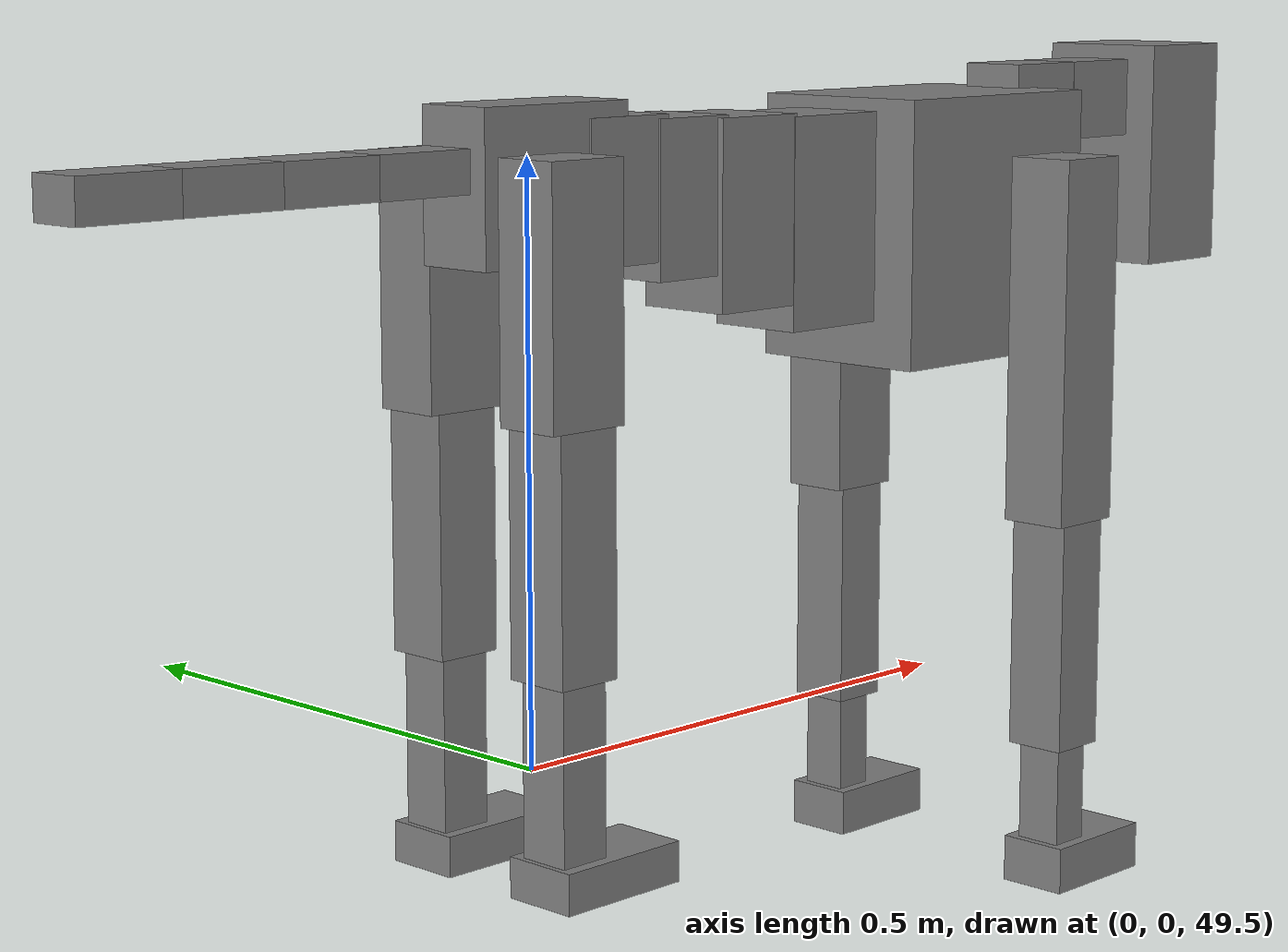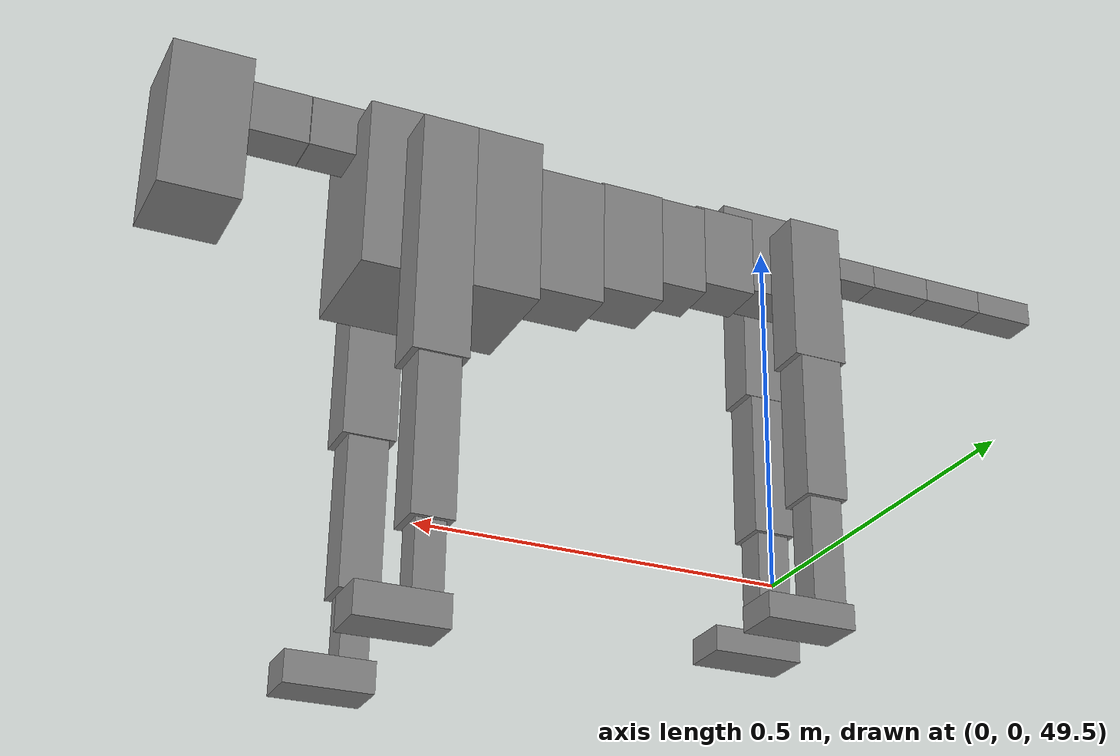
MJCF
<mujoco model="dog">

    <default>
        <joint armature="0.02" stiffness="1" damping="0.2" limited="true"/>
        <geom condim="3" friction="1 0.05 0.05" margin="0.01"/>
        <motor ctrllimited="true" ctrlrange="-1.0 1.0" forcelimited="true" gear="50"/>
    </default>

    <compiler inertiafromgeom="true" angle="radian"/>

    <option timestep="0.016" iterations="50" tolerance="1e-10" solver="Newton" jacobian="dense" cone="pyramidal"/>

    <size nconmax="20000" njmax="60000" nstack="5000000"/>
    <visual>
        <map force="0.1" zfar="30"/>
        <rgba haze="0.15 0.25 0.35 1"/>
        <quality shadowsize="2048"/>
        <global offwidth="800" offheight="800"/>
    </visual>

    <asset>
        <texture type="skybox" builtin="gradient" rgb1="0.3 0.5 0.7" rgb2="0 0 0" width="512" height="512"/>
        <texture name="texplane" type="2d" builtin="checker" rgb1=".2 .3 .4" rgb2=".1 0.15 0.2" width="512" height="512"
                 mark="cross" markrgb=".8 .8 .8"/>
        <texture name="texgeom" type="cube" builtin="flat" mark="cross" width="127" height="1278" rgb1="0.8 0.6 0.4"
                 rgb2="0.8 0.6 0.4" markrgb="1 1 1" random="0.01"/>

        <material name="matplane" reflectance="0.3" texture="texplane" texrepeat="1 1" texuniform="true"/>
        <material name="matgeom" texture="texgeom" texuniform="true" rgba="0.8 0.6 .4 1"/>
    </asset>

    <worldbody>
        <geom name="floor" pos="0 0 0" size="0 0 .25" type="plane" material="matplane" condim="3"/>

        <light directional="false" diffuse=".2 .2 .2" specular="0 0 0" pos="0 0 5" dir="0 0 -1" castshadow="false"/>
        <light mode="targetbodycom" target="torso" directional="false" diffuse=".8 .8 .8" specular="0.3 0.3 0.3"
               pos="0 0 4.0" dir="0 0 -1"/>

        <body name="root" pos="0 0 50">
            <freejoint name="root_1"/>
            <geom type="box" pos="0 0 -0.02" size="0.0774  0.0358  0.063" density="2030"/>

            <body name="spine1" pos="0.054 0 0">
                <joint name="spine1_y" axis="0 1 0" range="0 0.7" limited="true"/>
                <geom type="box" pos="0.02375 0 -0.03" size="0.04375  0.0375  0.05985" density="2030"/>

                <body name="spine2" pos="0.0612 0 0">
                    <joint name="spine2_y" axis="0 1 0" range="-0.15 0.15" limited="true"/>
                    <geom type="box" pos="0.03555  0  -0.04" size="0.04055  0.039  0.06615" density="2030"/>

                    <body name="spine3" pos="0.0730 0 0">
                        <joint name="spine3_y" axis="0 1 0" range="-0.15 0.15" limited="true"/>
                        <geom type="box" pos="0.03555  0  -0.057" size="0.04555  0.0445  0.081" density="2030"/>

                        <body name="spine4" pos="0.0780 0 0">
                            <joint name="spine4_y" axis="0 1 0" range="-0.15 0.15" limited="true"/>
                            <geom type="box" pos="0.05265  0  -0.07" size="0.05265  0.045  0.09135" density="2030"/>

                            <body name="torso" pos="0.1082 0 0">
                                <joint name="torso_y" axis="0 1 0" range="-0.15 0.15" limited="true"/>
                                <geom type="box" pos="0.11925  0  -0.085" size="0.11925  0.085  0.11745"
                                      density="2030"/>

                                <body name="neck1" pos="0.2160  0   0.0180">
                                    <joint name="neck1_y" axis="0 1 0" range="-1.2  -1" limited="true"/>
                                    <geom type="box" pos="0.0423  0  0" size="0.0423  0.03  0.036" density="2325"/>

                                    <body name="neck2" pos="0.0853  0  0">
                                        <joint name="neck2_y" axis="0 1 0" range="0.1  0" limited="true"/>
                                        <geom type="box" pos="0.0423  0  0" size="0.0423  0.03  0.036" density="2325"/>

                                        <body name="head" pos="0.0853  0  0">
                                            <joint name="head_y" axis="0 1 0" range="-0.3  -0.2" limited="true"/>
                                            <geom type="box" pos="0.0531  0  -0.055" size="0.0531  0.06  0.1044"
                                                  density="4030"/>

                                        </body>
                                    </body>
                                </body>

                                <body name="front_shoulder" pos="0.156  0   -0.0480">
                                    <joint name="front_shoulder_y" axis="0 1 0" range="-1 1.5" limited="true"/>
                                    <geom type="box" pos="0 0.13 -0.1366" size="0.0364  0.0311  0.1633" density="1158"/>
                                    <geom type="box" pos="0 -0.13 -0.1366" size="0.0364  0.0311  0.1633"
                                          density="1158"/>

                                    <body name="front_elbow" pos="0  0  -0.2732">
                                        <joint name="front_elbow_y" axis="0 1 0" range="-2 0" limited="true"/>
                                        <geom type="box" pos="0 0.13 -0.1174" size="0.0275  0.0281  0.1174"
                                              density="1081"/>
                                        <geom type="box" pos="0 -0.13 -0.1174" size="0.0275  0.0281  0.1174"
                                              density="1081"/>

                                        <body name="front_wrist" pos="0  0  -0.2348">
                                            <joint name="front_wrist_y" axis="0 1 0" range="-0.2 0" limited="true"/>
                                            <geom type="box" pos="0 0.13 -0.0524" size="0.0191  0.0212  0.0656"
                                                  density="1664"/>
                                            <geom type="box" pos="0 -0.13 -0.0524" size="0.0191  0.0212  0.0656"
                                                  density="1664"/>

                                            <body name="front_finger_end" pos="0  0  -0.1049">
                                                <joint name="front_finger_y" axis="0 1 0" range="-0.4 1"
                                                       limited="true"/>
                                                <geom type="box" pos="0.0318  0.13  -0.0060"
                                                      size="0.0582  0.0318  0.0210" density="1515"/>
                                                <geom type="box" pos="0.0318  -0.13  -0.0060"
                                                      size="0.0582  0.0318  0.0210" density="1515"/>

                                            </body>

                                        </body>
                                    </body>
                                </body>

                            </body>
                        </body>
                    </body>
                </body>
            </body>

            <body name="back_hip" pos="-0.03 0 -0.018">
                <joint name="back_hip_y" axis="0 1 0" range="-1.5 0.3" limited="true"/>
                <geom type="box" pos="0 0.07 -0.0817" size="0.0380  0.0298  0.1045" density="1154"/>
                <geom type="box" pos="0 -0.07 -0.0817" size="0.0380  0.0298  0.1045" density="1154"/>

                <body name="back_knee" pos="0  0  -0.1634">
                    <joint name="back_knee_y" axis="0 1 0" range="0 2.8" limited="true"/>
                    <geom type="box" pos="0 0.07 -0.1044" size="0.0297  0.0293  0.1200" density="1227"/>
                    <geom type="box" pos="0 -0.07 -0.1044" size="0.0297  0.0293  0.1200" density="1227"/>

                    <body name="back_ankle" pos="0  0  -0.2088">
                        <joint name="back_ankle_y" axis="0 1 0" range="-2.2 0" limited="true"/>
                        <geom type="box" pos="0 0.07 -0.0883" size="0.0231  0.0231  0.0995" density="1284"/>
                        <geom type="box" pos="0 -0.07 -0.0883" size="0.0231  0.0231  0.0995" density="1284"/>

                        <body name="back_toe_end" pos="0  0  -0.1766">
                            <joint name="back_toe_y" axis="0 1 0" range="-0.4 1" limited="true"/>
                            <geom type="box" pos="0.0338  0.07  -0.0022" size="0.0619  0.0338  0.0172" density="1515"/>
                            <geom type="box" pos="0.0338  -0.07  -0.0022" size="0.0619  0.0338  0.0172" density="1515"/>

                        </body>
                    </body>
                </body>
            </body>

            <body name="tail1" pos="-0.074 0 -0.006">
                <joint name="tail1_y" axis="0 1 0" range="-0.2 0.2" limited="true"/>
                <geom type="box" pos="-0.0536  0  0" size="0.045  0.025  0.0175" density="1587"/>

                <body name="tail2" pos="-0.09 0 0">
                    <joint name="tail2_y" axis="0 1 0" range="-0.2 0.2" limited="true"/>
                    <geom type="box" pos="-0.0536  0  0" size="0.045  0.025  0.0175" density="1587"/>

                    <body name="tail3" pos="-0.09 0 0">
                        <joint name="tail3_y" axis="0 1 0" range="-0.2 0.2" limited="true"/>
                        <geom type="box" pos="-0.0536  0  0" size="0.045  0.025  0.0175" density="1587"/>

                        <body name="tail4" pos="-0.09 0 0">
                            <joint name="tail4_y" axis="0 1 0" range="-0.2 0.2" limited="true"/>
                            <geom type="box" pos="-0.0536  0  0" size="0.045  0.025  0.0175" density="1587"/>

                        </body>
                    </body>
                </body>
            </body>
        </body>
    </worldbody>

    <actuator>
        <motor joint="spine1_y" forcerange="-150 150     "/>
        <motor joint="spine2_y" forcerange="-150 150     "/>
        <motor joint="spine3_y" forcerange="-150 150     "/>
        <motor joint="spine4_y" forcerange="-150 150     "/>
        <motor joint="torso_y" forcerange="-150 150     "/>
        <motor joint="neck1_y" forcerange="-100 100       "/>
        <motor joint="neck2_y" forcerange="-100 100       "/>
        <motor joint="head_y" forcerange="-150 150       "/>
        <motor joint="front_shoulder_y" forcerange="-120.12 187.32"/>
        <motor joint="front_elbow_y" forcerange="-126.44 177.93"/>
        <motor joint="front_wrist_y" forcerange="-79.81 89.60"/>
        <motor joint="front_finger_y" forcerange="-73.83 55.62"/>
        <motor joint="back_hip_y" forcerange="-381.57 215.74"/>
        <motor joint="back_knee_y" forcerange="-311.56 314.51"/>
        <motor joint="back_angle_y" forcerange="-79.57 190.58"/>
        <motor joint="back_toe_y" forcerange="-94.80 95.26"/>
        <motor joint="tail1_y" forcerange="-50 50     "/>
        <motor joint="tail2_y" forcerange="-50 50     "/>
        <motor joint="tail3_y" forcerange="-50 50     "/>
        <motor joint="tail4_y" forcerange="-50 50     "/>
    </actuator>
</mujoco>
